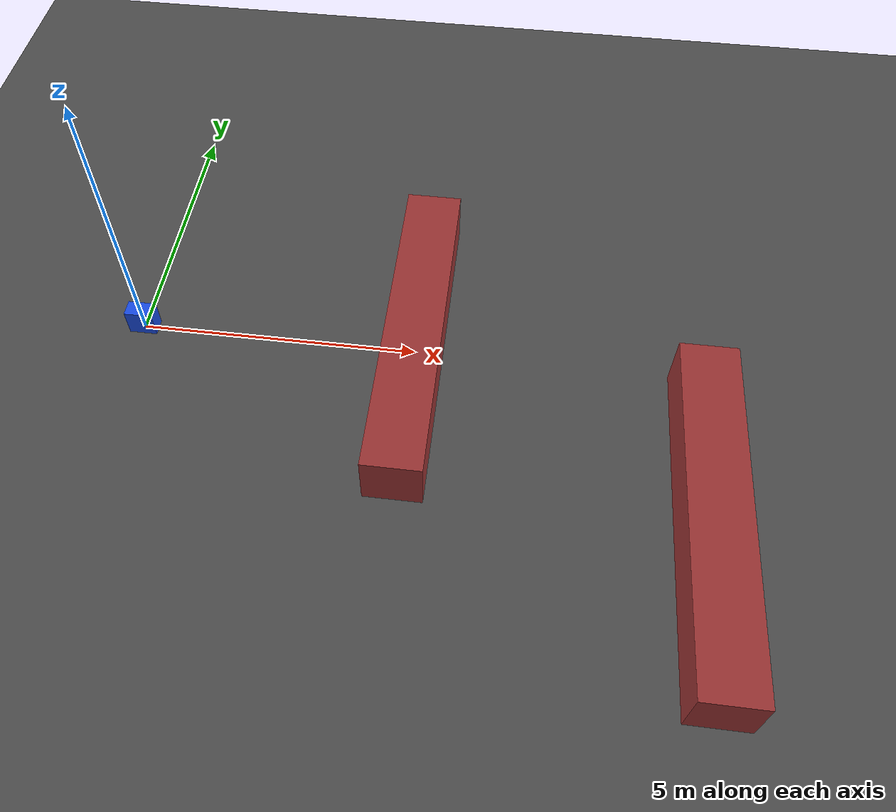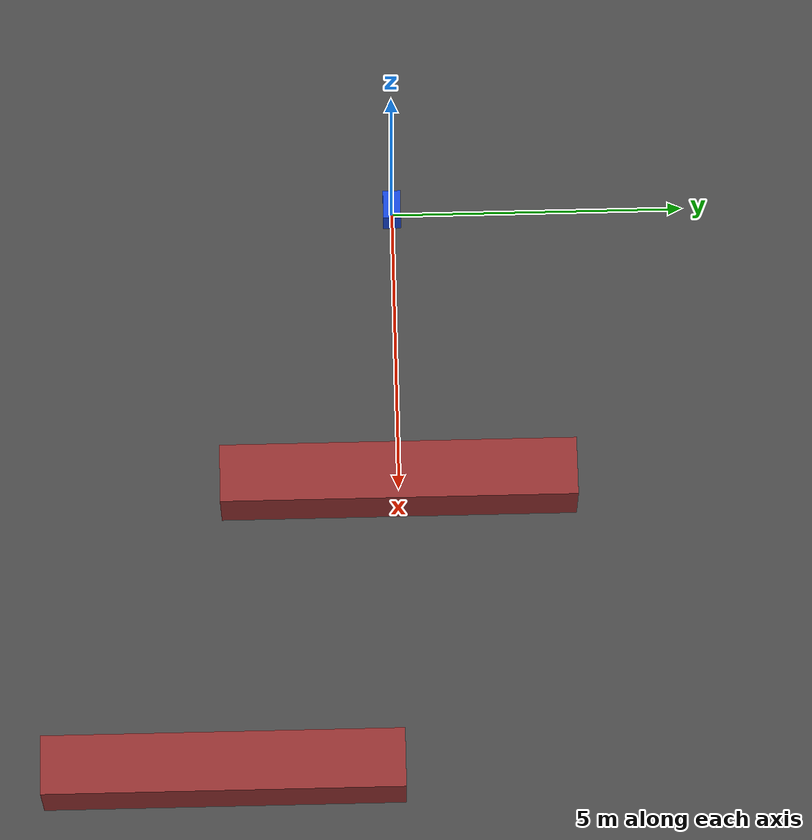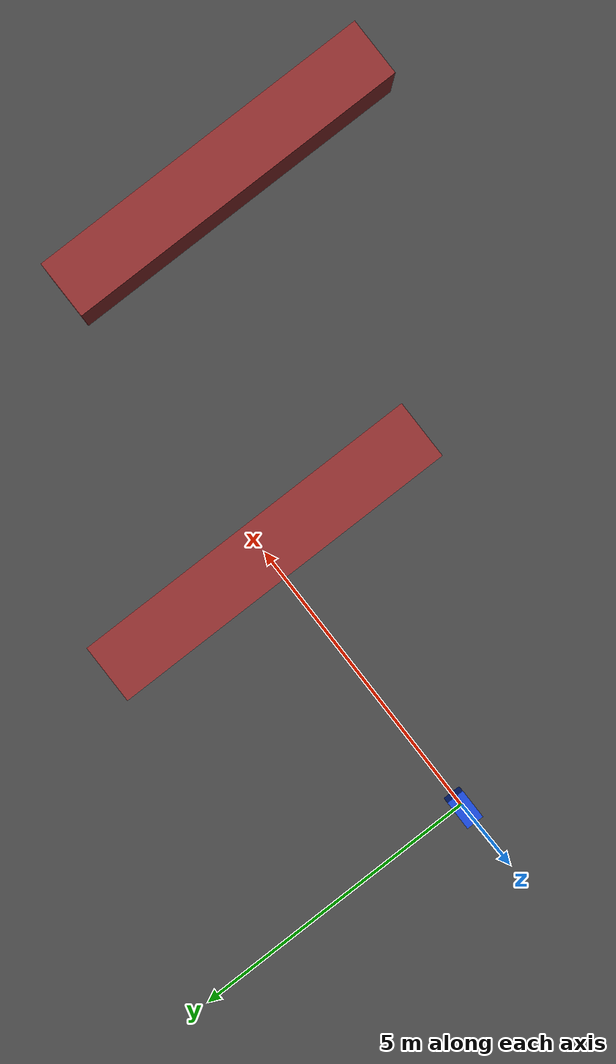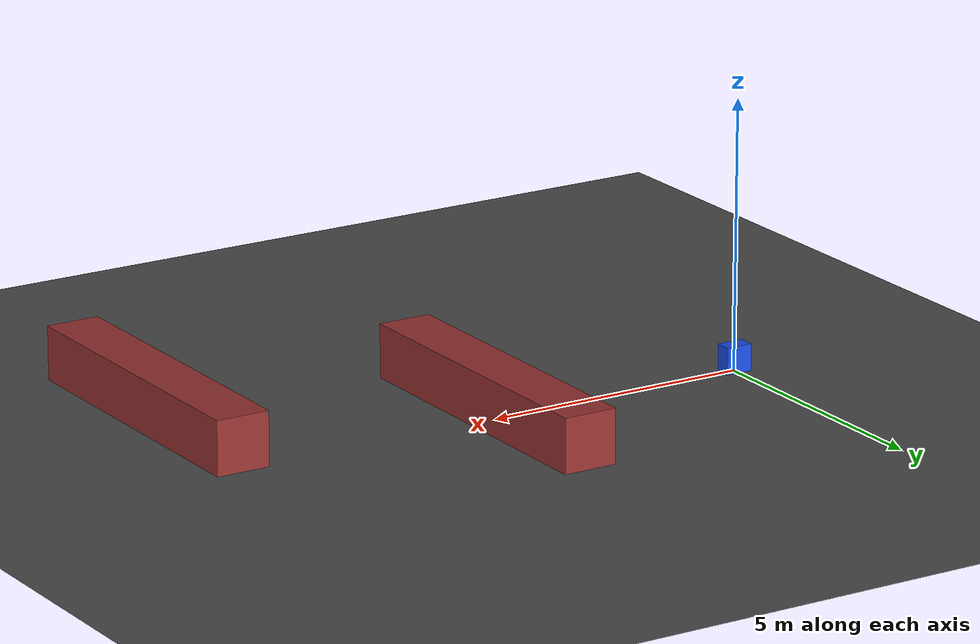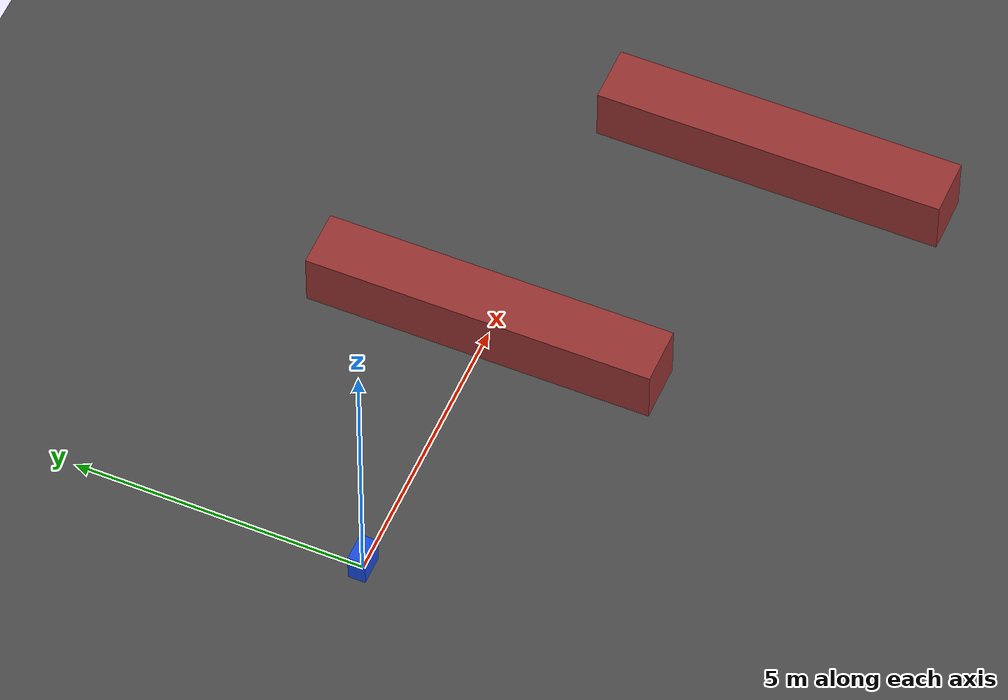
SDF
<?xml version="1.0"?>
<sdf version="1.9">
  <world name="challenge_world">
	<scene>
 	 <ambient>1.0 1.0 1.0 1</ambient>
 	 <background>0.8 0.8 0.8 1</background>
	</scene>

    <physics name="1ms" type="ode">
      <max_step_size>0.001</max_step_size>
      <real_time_factor>1.0</real_time_factor>
    </physics>
    <plugin filename="gz-sim-physics-system" name="gz::sim::systems::Physics"></plugin>
    <plugin filename="gz-sim-scene-broadcaster-system" name="gz::sim::systems::SceneBroadcaster"></plugin>
    <plugin filename="gz-sim-sensors-system" name="gz::sim::systems::Sensors"></plugin>
    <plugin filename="gz-sim-user-commands-system" name="gz::sim::systems::UserCommands"></plugin>

    <light type="directional" name="sun">
      <cast_shadows>false</cast_shadows>
      <pose>0 0 10 0 0 0</pose>
      <diffuse>1.0 1.0 1.0 1</diffuse>
      <specular>0.3 0.3 0.3 1</specular>
      <direction>-0.3 0.2 -0.9</direction>
    </light>

    <model name="ground_plane">
      <static>true</static>
      <link name="link">
        <collision name="collision">
          <geometry><plane><normal>0 0 1</normal><size>100 100</size></plane></geometry>
        </collision>
        <visual name="visual">
          <geometry><plane><normal>0 0 1</normal><size>100 100</size></plane></geometry>
          <material>
	<ambient>0.3 0.3 0.3 1</ambient>
	<diffuse>0.3 0.3 0.3 1</diffuse>
	</material>
        </visual>
      </link>
    </model>

    <model name="wall_1">
      <static>true</static>
      <pose>5 0 0.5 0 0 0</pose>
      <link name="link">
        <collision name="collision"><geometry><box><size>1 6 1</size></box></geometry></collision>
        <visual name="visual"><geometry><box><size>1 6 1</size></box></geometry>
          <material>
	<ambient>0.6 0.2 0.2 1</ambient>
	<diffuse>0.6 0.2 0.2 1</diffuse>
	</material></visual>
      </link>
    </model>

    <model name="wall_2">
      <static>true</static>
      <pose>10 -3 0.5 0 0 0</pose>
      <link name="link">
        <collision name="collision"><geometry><box><size>1 6 1</size></box></geometry></collision>
        <visual name="visual"><geometry><box><size>1 6 1</size></box></geometry>
          <material>
<ambient>0.6 0.2 0.2 1</ambient>
<diffuse>0.6 0.2 0.2 1</diffuse>
</material></visual>
      </link>
    </model>

    <model name="vehicle">
      <pose>0 0 0.25 0 0 0</pose>
      <link name="chassis">
        <inertial>
          <mass>5</mass>
          <inertia><ixx>0.5</ixx><iyy>0.5</iyy><izz>0.5</izz><ixy>0</ixy><ixz>0</ixz><iyz>0</iyz></inertia>
        </inertial>
        <collision name="collision"><geometry><box><size>0.5 0.3 0.5</size></box></geometry></collision>
        <visual name="visual"><geometry><box><size>0.5 0.3 0.5</size></box></geometry>
          <material>
	<ambient>0.1 0.3 0.9 1</ambient>
	<diffuse>0.1 0.3 0.9 1</diffuse>
	</material></visual>
      </link>
      <plugin filename="gz-sim-velocity-control-system" name="gz::sim::systems::VelocityControl">
        <topic>/model/vehicle/cmd_vel</topic>
      </plugin>
      <plugin filename="gz-sim-odometry-publisher-system" name="gz::sim::systems::OdometryPublisher">
        <odom_topic>/model/vehicle/odometry</odom_topic>
        <odom_frame>world</odom_frame>
        <robot_base_frame>vehicle</robot_base_frame>
      </plugin>
    </model>
  </world>
</sdf>
